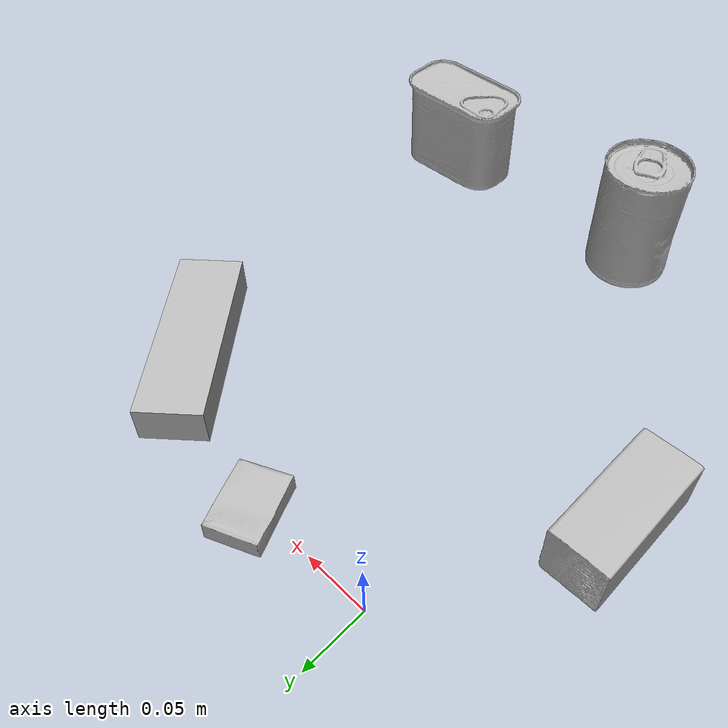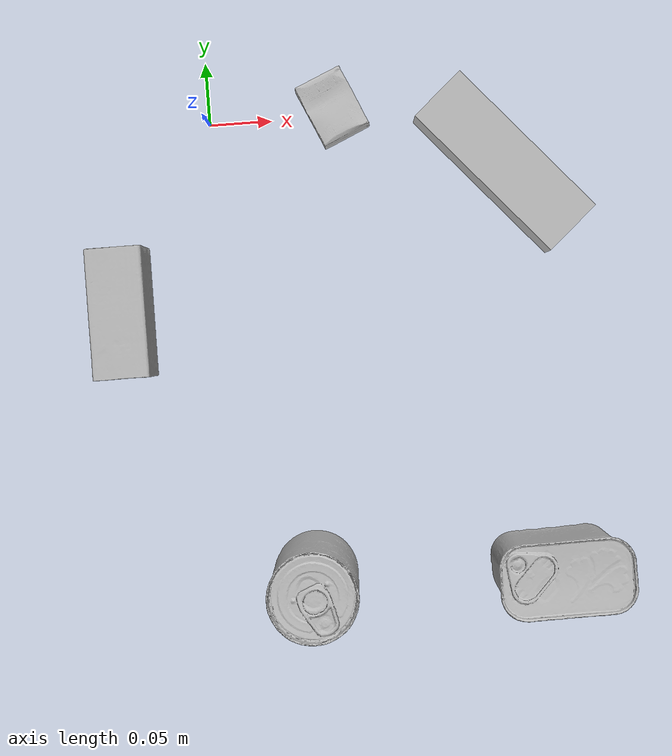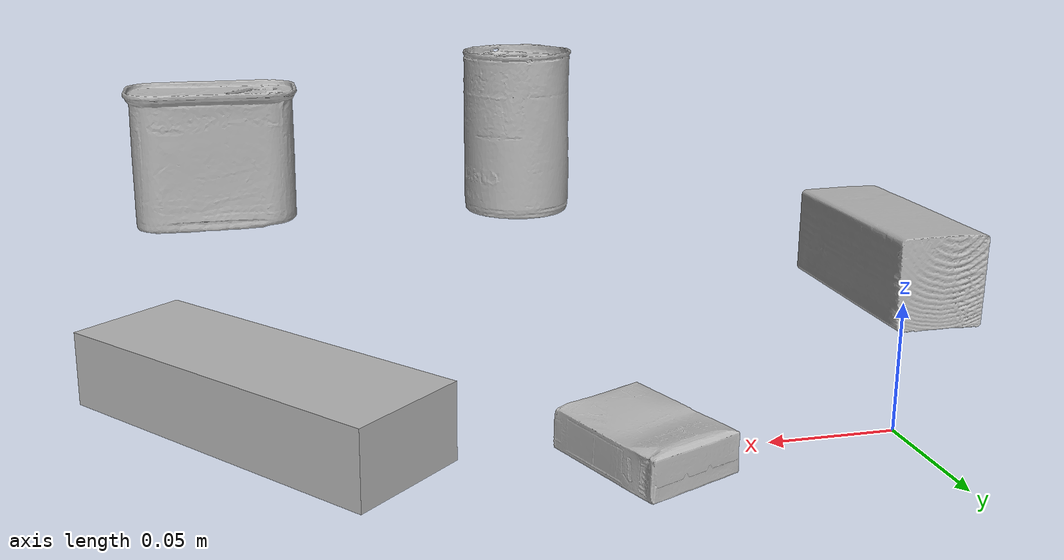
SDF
<sdf version="1.4">
  <world name="default">
    <light name="light1" type="point">
      <pose>0 0 1 0 0 0</pose>
      <diffuse>3 3 3 1</diffuse>
      <specular>3 3 3 1</specular>
    </light>
    <light name="light2" type="point">
      <pose>0 0.5 2 0 0 0</pose>
      <diffuse>1 1 1 1</diffuse>
      <specular>1 1 1 1</specular>
    </light>
    <light name="light3" type="point">
      <pose>0 0.5 2 0 0 0</pose>
      <diffuse>3 3 3 1</diffuse>
      <specular>3 3 3 1</specular>
    </light>
    <scene>
      <ambient>0.7 0.7 0.7</ambient>
    </scene>
    <model name="box1">
      <link name="link_box1">
        <collision name="default">
          <geometry>
            <mesh>
              <uri>model://jenga/collision_meshes/collision.obj</uri>
              <scale>1.0 1.0 1.0</scale>
            </mesh>
          </geometry>
          <surface>
            <friction>
              <ode>
                <mu>0.5</mu>
                <mu2>0.5</mu2>
              </ode>
            </friction>
          <contact>
        <ode>
            <max_vel>0</max_vel>
            <min_depth>0.0001</min_depth>
            <kp>1e8</kp>
        </ode>
    </contact></surface>
        </collision>
        <visual name="default">
          <geometry>
            <mesh>
              <uri>model://jenga/visual_meshes/visual.dae</uri>
              <scale>1.0 1.0 1.0</scale>
            </mesh>
          </geometry>
        </visual>
        <inertial>
          <mass>0.13349448144435883</mass>
          <pose>-2.502855807051674e-07 -0.00010250010382151231 -4.0923401684267446e-05 0.0 -7.342153480750062e-07 0.0</pose>
          <inertia>
            <ixx>3.694116e-05</ixx>
            <iyy>0.0002503123</iyy>
            <izz>0.00026722968</izz>
            <ixy>0</ixy>
            <ixz>0</ixz>
            <iyz>0</iyz>
          </inertia>
        </inertial>
      </link>
      <pose>0.23224273324012756 -0.0495426282286644 0.014999995939433575 6.9285703581915695e-09 -1.5697838384990002e-09 2.2901558492072325</pose>
    </model>
    <model name="box2">
      <link name="link_box2">
        <collision name="default">
          <geometry>
            <mesh>
              <uri>model://cracker_box/collision_meshes/collision.obj</uri>
              <scale>0.25 0.25 0.25</scale>
            </mesh>
          </geometry>
          <surface>
            <friction>
              <ode>
                <mu>0.5</mu>
                <mu2>0.5</mu2>
              </ode>
            </friction>
          <contact>
        <ode>
            <max_vel>0</max_vel>
            <min_depth>0.0001</min_depth>
            <kp>1e8</kp>
        </ode>
    </contact></surface>
        </collision>
        <visual name="default">
          <geometry>
            <mesh>
              <uri>model://cracker_box/visual_meshes/visual.dae</uri>
              <scale>0.25 0.25 0.25</scale>
            </mesh>
          </geometry>
        </visual>
        <inertial>
          <mass>0.02145323157310486</mass>
          <pose>0.00023660292208660394 6.358561950037256e-05 -0.00042573839891701937 -0.00031620765701486096 -0.011106487737550933 0.0025467954675071156</pose>
          <inertia>
            <ixx>3.4104648e-06</ixx>
            <iyy>5.631348e-06</iyy>
            <izz>8.036451e-06</izz>
            <ixy>0</ixy>
            <ixz>0</ixz>
            <iyz>0</iyz>
          </inertia>
        </inertial>
      </link>
      <pose>0.0997529849410057 0.005652665160596371 0.009120453149080276 -0.011788026472245944 -0.007367170832525569 -1.1586724017892223</pose>
    </model>
    <model name="box3">
      <link name="link_box3">
        <collision name="default">
          <geometry>
            <mesh>
              <uri>model://wood_block/collision_meshes/collision.obj</uri>
              <scale>0.5 0.5 0.5</scale>
            </mesh>
          </geometry>
          <surface>
            <friction>
              <ode>
                <mu>0.5</mu>
                <mu2>0.5</mu2>
              </ode>
            </friction>
          <contact>
        <ode>
            <max_vel>0</max_vel>
            <min_depth>0.0001</min_depth>
            <kp>1e8</kp>
        </ode>
    </contact></surface>
        </collision>
        <visual name="default">
          <geometry>
            <mesh>
              <uri>model://wood_block/visual_meshes/visual.dae</uri>
              <scale>0.5 0.5 0.5</scale>
            </mesh>
          </geometry>
        </visual>
        <inertial>
          <mass>0.16313479840755463</mass>
          <pose>-2.9066577553749084e-06 -0.000285404734313488 0.00013204291462898254 -0.05221116552051519 -0.005192696094342747 -0.006861377806143115</pose>
          <inertia>
            <ixx>5.457476e-05</ixx>
            <iyy>0.00017240169</iyy>
            <izz>0.00017175681</izz>
            <ixy>0</ixy>
            <ixz>0</ixz>
            <iyz>0</iyz>
          </inertia>
        </inertial>
      </link>
      <pose>-0.07789600640535355 -0.14700651168823242 0.022629264742136 -0.005208540267345557 0.005718755961588054 1.5739699832111855</pose>
    </model>
    <model name="can1">
      <link name="link_can1">
        <collision name="default">
          <geometry>
            <mesh>
              <uri>model://potted_meat_can/collision_meshes/collision.obj</uri>
              <scale>1.0 1.0 1.0</scale>
            </mesh>
          </geometry>
          <surface>
            <friction>
              <ode>
                <mu>0.5</mu>
                <mu2>0.5</mu2>
              </ode>
            </friction>
          <contact>
        <ode>
            <max_vel>0</max_vel>
            <min_depth>0.0001</min_depth>
            <kp>1e8</kp>
        </ode>
    </contact></surface>
        </collision>
        <visual name="default">
          <geometry>
            <mesh>
              <uri>model://potted_meat_can/visual_meshes/visual.dae</uri>
              <scale>1.0 1.0 1.0</scale>
            </mesh>
          </geometry>
        </visual>
        <inertial>
          <mass>0.5782443881034851</mass>
          <pose>0.00022888134117238224 -5.989118290017359e-05 -0.0006367441383190453 -0.028093373189925445 -0.007232601430987569 0.015406267190211613</pose>
          <inertia>
            <ixx>0.0007438508</ixx>
            <iyy>0.00045194585</iyy>
            <izz>0.0005410098</izz>
            <ixy>0</ixy>
            <ixz>0</ixz>
            <iyz>0</iyz>
          </inertia>
        </inertial>
      </link>
      <pose>0.24880212545394897 -0.36909884214401245 0.04212799668312073 -8.066639133747592e-08 -3.977934366341639e-07 -1.5644101036463935</pose>
    </model>
    <model name="can2">
      <link name="link_can2">
        <collision name="default">
          <geometry>
            <mesh>
              <uri>model://tomato_soup_can/collision_meshes/collision.obj</uri>
              <scale>1.0 1.0 1.0</scale>
            </mesh>
          </geometry>
          <surface>
            <friction>
              <ode>
                <mu>0.5</mu>
                <mu2>0.5</mu2>
              </ode>
            </friction>
          <contact>
        <ode>
            <max_vel>0</max_vel>
            <min_depth>0.0001</min_depth>
            <kp>1e8</kp>
        </ode>
    </contact></surface>
        </collision>
        <visual name="default">
          <geometry>
            <mesh>
              <uri>model://tomato_soup_can/visual_meshes/visual.dae</uri>
              <scale>1.0 1.0 1.0</scale>
            </mesh>
          </geometry>
        </visual>
        <inertial>
          <mass>0.191082164645195</mass>
          <pose>0.00012652273289859295 0.00010805522470036522 -0.0017973986687138677 0.007020071598615513 0.0004229929517945175 -0.009903241323856832</pose>
          <inertia>
            <ixx>0.0002095054</ixx>
            <iyy>0.00020829454</iyy>
            <izz>0.0001085847</izz>
            <ixy>0</ixy>
            <ixz>0</ixz>
            <iyz>0</iyz>
          </inertia>
        </inertial>
      </link>
      <pose>0.06019406393170357 -0.3653241991996765 0.051274001598358154 -3.548942867377446e-07 -4.976352931030318e-07 0.10978160777674753</pose>
    </model>
  <physics type="ode">
      <max_contacts>50</max_contacts>
      <ode>
        <solver>
          <type>quick</type>
          <iters>75</iters>
        </solver>
        <constraints>
          <contact_max_correcting_vel>0</contact_max_correcting_vel>
          <contact_surface_layer>0</contact_surface_layer>
        </constraints>
      </ode>
    </physics></world>
</sdf>
